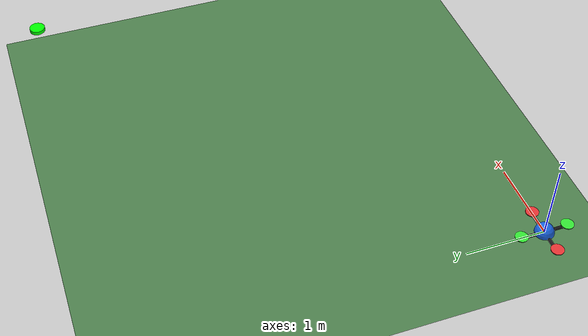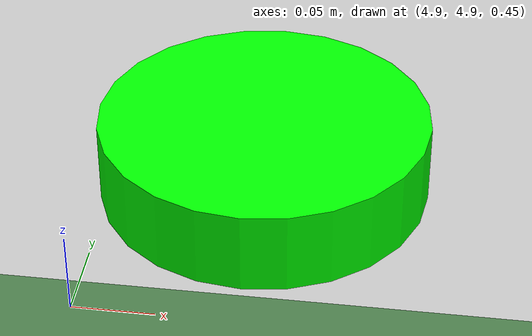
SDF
<?xml version="1.0"?>
<sdf version="1.6">
  <world name="formation_control_world">

    <!-- Physics settings -->
    <physics type="ode">
      <max_step_size>0.001</max_step_size>
      <real_time_factor>1.0</real_time_factor>
      <real_time_update_rate>1000</real_time_update_rate>
    </physics>

    <!-- Scene lighting -->
    <scene>
      <ambient>0.5 0.5 0.5 1</ambient>
      <background>0.3 0.3 0.3 1</background>
      <shadows>true</shadows>
    </scene>

    <!-- Sun -->
    <light name="sun" type="directional">
      <cast_shadows>true</cast_shadows>
      <pose>0 0 10 0 0 0</pose>
      <diffuse>0.8 0.8 0.8 1</diffuse>
      <specular>0.2 0.2 0.2 1</specular>
      <attenuation>
        <range>1000</range>
        <constant>0.9</constant>
        <linear>0.01</linear>
        <quadratic>0.001</quadratic>
      </attenuation>
      <direction>-0.5 0.1 -0.9</direction>
    </light>

    <!-- Ground plane -->
    <model name="ground_plane">
      <static>true</static>
      <link name="link">
        <collision name="collision">
          <geometry>
            <plane>
              <normal>0 0 1</normal>
              <size>100 100</size>
            </plane>
          </geometry>
        </collision>
        <visual name="visual">
          <geometry>
            <plane>
              <normal>0 0 1</normal>
              <size>100 100</size>
            </plane>
          </geometry>
          <material>
            <ambient>0.3 0.5 0.3 1</ambient>
            <diffuse>0.3 0.5 0.3 1</diffuse>
          </material>
        </visual>
      </link>
    </model>

    <!-- Drone agent_0 -->
    <model name="agent_0">
      <pose>0 0 0 0 0 0</pose>
      <static>false</static>

      <link name="base_link">
        <inertial>
          <mass>1.5</mass>
          <inertia>
            <ixx>0.0347563</ixx>
            <iyy>0.0458929</iyy>
            <izz>0.0977</izz>
          </inertia>
        </inertial>

        <!-- Central body -->
        <visual name="body">
          <geometry>
            <sphere>
              <radius>0.12</radius>
            </sphere>
          </geometry>
          <material>
            <ambient>0.1 0.3 0.8 1</ambient>
            <diffuse>0.1 0.4 0.9 1</diffuse>
          </material>
        </visual>

        <!-- Arms -->
        <visual name="arm_x">
          <pose>0 0 0 0 1.5708 0</pose>
          <geometry>
            <cylinder>
              <radius>0.02</radius>
              <length>0.6</length>
            </cylinder>
          </geometry>
          <material>
            <ambient>0.05 0.05 0.05 1</ambient>
            <diffuse>0.1 0.1 0.1 1</diffuse>
          </material>
        </visual>
        <visual name="arm_y">
          <pose>0 0 0 1.5708 0 0</pose>
          <geometry>
            <cylinder>
              <radius>0.02</radius>
              <length>0.6</length>
            </cylinder>
          </geometry>
          <material>
            <ambient>0.05 0.05 0.05 1</ambient>
            <diffuse>0.1 0.1 0.1 1</diffuse>
          </material>
        </visual>

        <!-- Rotors -->
        <visual name="rotor_front">
          <pose>0.3 0 0.03 0 0 0</pose>
          <geometry>
            <cylinder>
              <radius>0.08</radius>
              <length>0.01</length>
            </cylinder>
          </geometry>
          <material>
            <ambient>0.8 0.1 0.1 1</ambient>
            <diffuse>0.9 0.2 0.2 1</diffuse>
          </material>
        </visual>
        <visual name="rotor_back">
          <pose>-0.3 0 0.03 0 0 0</pose>
          <geometry>
            <cylinder>
              <radius>0.08</radius>
              <length>0.01</length>
            </cylinder>
          </geometry>
          <material>
            <ambient>0.8 0.1 0.1 1</ambient>
            <diffuse>0.9 0.2 0.2 1</diffuse>
          </material>
        </visual>
        <visual name="rotor_left">
          <pose>0 0.3 0.03 0 0 0</pose>
          <geometry>
            <cylinder>
              <radius>0.08</radius>
              <length>0.01</length>
            </cylinder>
          </geometry>
          <material>
            <ambient>0.1 0.8 0.1 1</ambient>
            <diffuse>0.2 0.9 0.2 1</diffuse>
          </material>
        </visual>
        <visual name="rotor_right">
          <pose>0 -0.3 0.03 0 0 0</pose>
          <geometry>
            <cylinder>
              <radius>0.08</radius>
              <length>0.01</length>
            </cylinder>
          </geometry>
          <material>
            <ambient>0.1 0.8 0.1 1</ambient>
            <diffuse>0.2 0.9 0.2 1</diffuse>
          </material>
        </visual>

        <collision name="collision">
          <geometry>
            <sphere>
              <radius>0.2</radius>
            </sphere>
          </geometry>
        </collision>
      </link>

      <!-- Plugin -->
      <plugin name="simple_drone_plugin" filename="libsimple_drone_plugin.so">
        <namespace>agent_0</namespace>
      </plugin>
    </model>

    <!-- Target marker at (5, 5) -->
    <model name="target_marker">
      <pose>5 5 0.5 0 0 0</pose>
      <static>true</static>
      <link name="link">
        <visual name="visual">
          <geometry>
            <cylinder>
              <radius>0.1</radius>
              <length>0.05</length>
            </cylinder>
          </geometry>
          <material>
            <ambient>0 1 0 1</ambient>
            <diffuse>0 1 0 1</diffuse>
          </material>
        </visual>
      </link>
    </model>

  </world>
</sdf>
